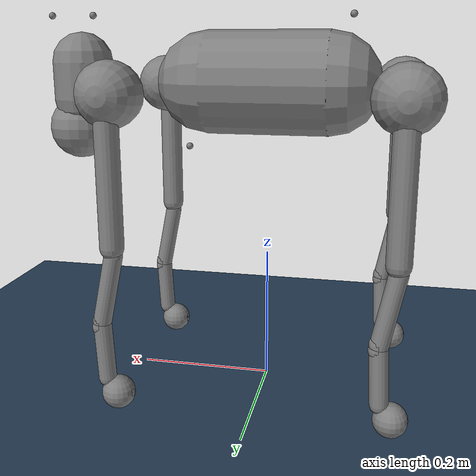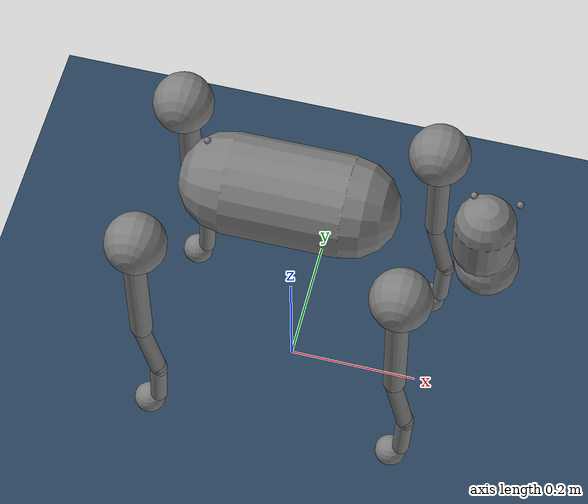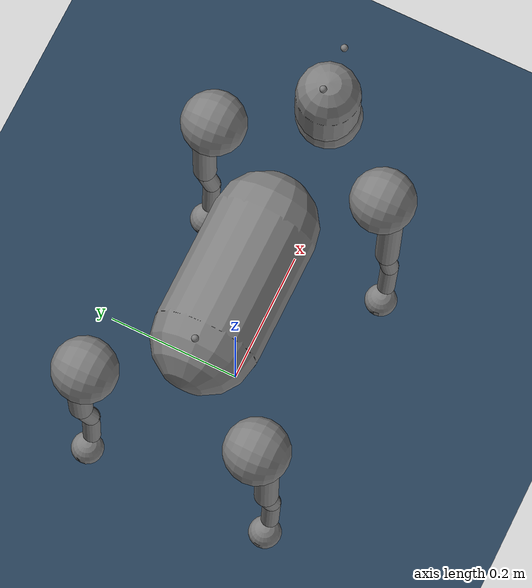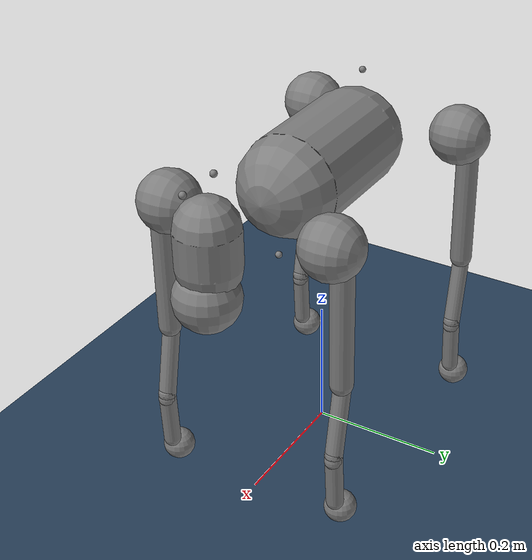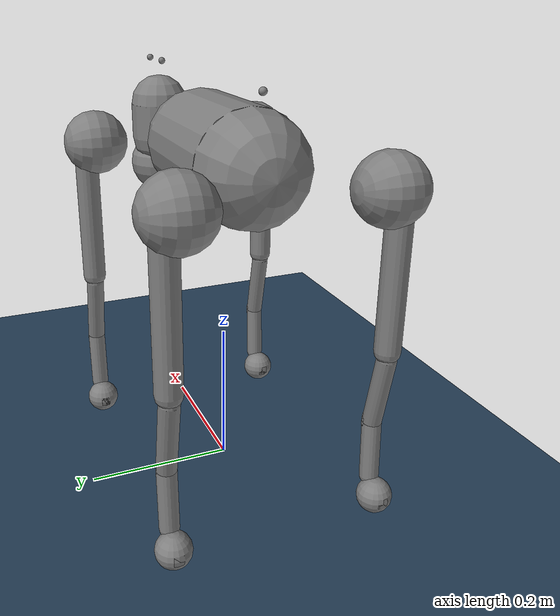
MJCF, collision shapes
<mujoco model="go2 scene">
  <include file="go2_torque_test.xml" />

  <statistic center="0 0 0.1" extent="0.8" />

  <visual>
    <headlight diffuse="0.6 0.6 0.6" ambient="0.3 0.3 0.3" specular="0 0 0" />
    <rgba haze="0.15 0.25 0.35 1" />
    <global azimuth="-130" elevation="-20" />
  </visual>

  <asset>
    <texture type="skybox" builtin="gradient" rgb1="0.3 0.5 0.7" rgb2="0 0 0" width="512" height="3072" />
    <texture type="2d" name="groundplane" builtin="checker" mark="edge" rgb1="0.2 0.3 0.4" rgb2="0.1 0.2 0.3"  markrgb="1 1 1" width="300" height="300" />
    <material name="groundplane" texture="groundplane" texuniform="true" texrepeat="1 1" reflectance="0.2" />
  </asset>

  <worldbody>
    <light pos="0 0 10" dir="0 0 -1" directional="true" />
    <geom name="floor" size="0 0 0.05" type="plane" material="groundplane" />
  </worldbody>

  <sensor>

    <jointpos name="FL_hip_pos" joint="FL_hip_joint" />
    <jointpos name="FL_thigh_pos" joint="FL_thigh_joint" />
    <jointpos name="FL_calf_pos" joint="FL_calf_joint" />
    <jointpos name="FR_hip_pos" joint="FR_hip_joint" />
    <jointpos name="FR_thigh_pos" joint="FR_thigh_joint" />
    <jointpos name="FR_calf_pos" joint="FR_calf_joint" />
    <jointpos name="RL_hip_pos" joint="RL_hip_joint" />
    <jointpos name="RL_thigh_pos" joint="RL_thigh_joint" />
    <jointpos name="RL_calf_pos" joint="RL_calf_joint" />
    <jointpos name="RR_hip_pos" joint="RR_hip_joint" />
    <jointpos name="RR_thigh_pos" joint="RR_thigh_joint" />
    <jointpos name="RR_calf_pos" joint="RR_calf_joint" />

    <jointvel name="FL_hip_vel" joint="FL_hip_joint" />
    <jointvel name="FL_thigh_vel" joint="FL_thigh_joint" />
    <jointvel name="FL_calf_vel" joint="FL_calf_joint" />
    <jointvel name="FR_hip_vel" joint="FR_hip_joint" />
    <jointvel name="FR_thigh_vel" joint="FR_thigh_joint" />
    <jointvel name="FR_calf_vel" joint="FR_calf_joint" />
    <jointvel name="RL_hip_vel" joint="RL_hip_joint" />
    <jointvel name="RL_thigh_vel" joint="RL_thigh_joint" />
    <jointvel name="RL_calf_vel" joint="RL_calf_joint" />
    <jointvel name="RR_hip_vel" joint="RR_hip_joint" />
    <jointvel name="RR_thigh_vel" joint="RR_thigh_joint" />
    <jointvel name="RR_calf_vel" joint="RR_calf_joint" />

    <jointactuatorfrc name="FL_hip_torque" joint="FL_hip_joint" noise="0.01" />
    <jointactuatorfrc name="FL_thigh_torque" joint="FL_thigh_joint" noise="0.01" />
    <jointactuatorfrc name="FL_calf_torque" joint="FL_calf_joint" noise="0.01" />
    <jointactuatorfrc name="FR_hip_torque" joint="FR_hip_joint" noise="0.01" />
    <jointactuatorfrc name="FR_thigh_torque" joint="FR_thigh_joint" noise="0.01" />
    <jointactuatorfrc name="FR_calf_torque" joint="FR_calf_joint" noise="0.01" />
    <jointactuatorfrc name="RL_hip_torque" joint="RL_hip_joint" noise="0.01" />
    <jointactuatorfrc name="RL_thigh_torque" joint="RL_thigh_joint" noise="0.01" />
    <jointactuatorfrc name="RL_calf_torque" joint="RL_calf_joint" noise="0.01" />
    <jointactuatorfrc name="RR_hip_torque" joint="RR_hip_joint" noise="0.01" />
    <jointactuatorfrc name="RR_thigh_torque" joint="RR_thigh_joint" noise="0.01" />
    <jointactuatorfrc name="RR_calf_torque" joint="RR_calf_joint" noise="0.01" />

    <framequat name="imu_quat" objtype="site" objname="imu" />
    <gyro name="imu_gyro" site="imu" />
    <accelerometer name="imu_acc" site="imu" />

    <framepos name="imu_pos_w" objtype="site" objname="imu" />
    <framelinvel name="imu_vel_w" objtype="site" objname="imu" />

    <velocimeter name="base_vel" site="base_site" />
    <gyro name="base_gyro" site="base_site" />
    <framepos name="base_pos_w" objtype="site" objname="base_site" />
    <framequat name="base_quat_w" objtype="site" objname="base_site" />
    <framelinvel name="base_vel_w" objtype="site" objname="base_site"  />

  </sensor>
</mujoco>

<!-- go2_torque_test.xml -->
<mujoco model="go2">
  <compiler angle="radian" meshdir="assets" autolimits="true" />

  <option cone="elliptic" impratio="1" tolerance="0" ls_tolerance="0" />
  <!-- noslip_iterations="0" tolerance="0"  -->
  <visual>
    <global offheight="2160" offwidth="3840"/>
    <quality offsamples="8"/>
  </visual>

  <default>
    <default class="go2">
      <geom friction="0.4" margin="0.001" condim="1"/>
      <camera fovy="58"/>
      <joint axis="0 1 0" armature="0.0" damping="0.0" frictionloss="0.0" />
      <motor ctrllimited="false" ctrlrange="-23.7 23.7"/>  -->

      <default class="abduction">
        <joint axis="1 0 0" range="-1.0472 1.0472" />

      </default>
      <default class="hip">
        <default class="front_hip">
          <joint range="-1.5708 3.4907"  />
        </default>
        <default class="back_hip">
          <joint range="-0.5236 4.5379" />
        </default>
      </default>
      <default class="knee">
        <motor ctrllimited="false" ctrlrange="-45.43 45.43"/>
        <joint range="-2.7227 -0.83776" />
      </default>
      <default class="visual">
        <geom type="mesh" contype="0" conaffinity="0" group="2"/>
      </default>
      <default class="collision">
        <geom group="3"/>
        <default class="foot">
          <geom size="0.022" pos="-0.002 0 -0.213" priority="1" condim="6"
            friction="0.2 0.02 0.01"/>
        </default>
      </default>
    </default>
  </default>

  <asset>
    <material name="metal" rgba=".9 .95 .95 1" />
    <material name="black" rgba="0 0 0 1" />
    <material name="white" rgba="1 1 1 1" />
    <material name="gray" rgba="0.671705 0.692426 0.774270 1" />

    <mesh file="base_0.obj" />
    <mesh file="base_1.obj" />
    <mesh file="base_2.obj" />
    <mesh file="base_3.obj" />
    <mesh file="base_4.obj" />
    <mesh file="hip_0.obj" />
    <mesh file="hip_1.obj" />
    <mesh file="thigh_0.obj" />
    <mesh file="thigh_1.obj" />
    <mesh file="thigh_mirror_0.obj" />
    <mesh file="thigh_mirror_1.obj" />
    <mesh file="calf_0.obj" />
    <mesh file="calf_1.obj" />
    <mesh file="calf_mirror_0.obj" />
    <mesh file="calf_mirror_1.obj" />
    <mesh file="foot.obj" />
  </asset>

  <worldbody>
    <body name="base_link" pos="0 0 0.445" childclass="go2">
      <inertial pos="0.021112 0 -0.005366" quat="-0.000543471 0.713435 -0.00173769 0.700719"
        mass="6.921"
        diaginertia="0.107027 0.0980771 0.0244531" />
      <freejoint />
      <geom mesh="base_0" material="black" class="visual" />
      <geom mesh="base_1" material="black" class="visual" />
      <geom mesh="base_2" material="black" class="visual" />
      <geom mesh="base_3" material="white" class="visual" />
      <geom mesh="base_4" material="gray" class="visual" />
      <geom name="base_box" size="0.075 0.0881" pos="0.0 0 0.01" quat="0 0.7071 0 0.7071" type="capsule" class="collision" />
      <geom name="base_head_top" size="0.045 0.027" pos="0.285 0 0.01" type="capsule" class="collision" />
      <geom name="base_head_bottom" size="0.047" pos="0.293 0 -0.06" class="collision" />

      <site name="imu" pos="-0.02557 0 0.04232" />
      <site name="base_site" pos="0 0 0" />

      <geom name="z_dummy" pos="0 0 0" size="0.001" />

      <camera name="front" pos="0.33 0 0.105" quat="0.56098553 0.43045933 -0.43045933 -0.56098553"/>
      <site name="front_cam" pos="0.33 0 0.105" quat="0.56098553 0.43045933 -0.43045933 -0.56098553"/>
      <camera name="top" pos="0.265 0 0.105" quat="0 1 0 0" />
      <site name="top_cam" pos="0.265 0 0.105" quat="0 1 0 0" />
      <camera name="back" pos="-0.118 0 0.105" quat="0.56098553 0.43045933 0.43045933 0.56098553"/>
      <site name="back_cam" pos="-0.118 0 0.105" quat="0.56098553 0.43045933 0.43045933 0.56098553"/>
      <camera name="bottom" pos="0.12 0 -0.085"/>
      <site name="bottom_cam" pos="0.12 0 -0.085"/>

      <site name="FL_hip_fixed_site" pos="0.1934 0.142 0" />
      <body name="FL_hip" pos="0.1934 0.0465 0">
        <inertial pos="-0.0054 0.00194 -0.000105" quat="0.497014 0.499245 0.505462 0.498237"
          mass="0.678"
          diaginertia="0.00088403 0.000596003 0.000479967" />
        <joint name="FL_hip_joint" class="abduction" />
        <geom mesh="hip_0" material="metal" class="visual" />
        <geom mesh="hip_1" material="gray" class="visual" />
        <geom name="FL_hip_geom" size="0.046" pos="0 0.08 0" quat="0.707107 0.707107 0 0" type="sphere" class="collision" />
        <body name="FL_thigh" pos="0 0.0955 0">
          <inertial pos="-0.00374 -0.0223 -0.0327" quat="0.829533 0.0847635 -0.0200632 0.551623"
            mass="1.152"
            diaginertia="0.00594973 0.00584149 0.000878787" />
          <site name="FL_thigh_site" pos="0 0 0" />
          <joint name="FL_thigh_joint" class="front_hip" />
          <geom mesh="thigh_0" material="metal" class="visual" />
          <geom mesh="thigh_1" material="gray" class="visual" />
          <geom name="FL_thigh_geom" size="0.017 0.1015" pos="0 0 -0.1065" quat="0 0.707107 0.707107 0"
            type="capsule" class="collision" />
          <body name="FL_calf" pos="0 0 -0.213">
            <inertial pos="0.00629595 -0.000622121 -0.141417"
              quat="0.710672 0.00154099 -0.00450087 0.703508"
              mass="0.241352" diaginertia="0.0014901 0.00146356 5.31397e-05" />
            <joint name="FL_calf_joint" class="knee" />
            <geom mesh="calf_0" material="gray" class="visual" />
            <geom mesh="calf_1" material="black" class="visual" />
            <geom name="FL_shank_top" size="0.013 0.055" pos="0.01 0 -0.06" quat="0.994493 0 -0.104807 0"
              type="capsule" class="collision" />
            <geom name="FL_shank_bottom" size="0.013 0.044" pos="0.018 0 -0.148" quat="0.999688 0 0.0249974 0"
              type="capsule" class="collision" />
            <geom pos="0 0 -0.213" mesh="foot" class="visual" material="black" />
            <geom name="FL" class="foot" />
            <body name="FL_foot" pos="0 0 -0.213" />
            <site name="FL_foot_site" pos="0 0 -0.213" size="0.024"/>
          </body>
        </body>
      </body>
      <site name="FR_hip_fixed_site" pos="0.1934 -.142 0" />
      <body name="FR_hip" pos="0.1934 -0.0465 0">
        <inertial pos="-0.0054 -0.00194 -0.000105" quat="0.498237 0.505462 0.499245 0.497014"
          mass="0.678"
          diaginertia="0.00088403 0.000596003 0.000479967" />
        <joint name="FR_hip_joint" class="abduction" />
        <geom mesh="hip_0" material="metal" class="visual" quat="4.63268e-05 1 0 0" />
        <geom mesh="hip_1" material="gray" class="visual" quat="4.63268e-05 1 0 0" />
        <geom name="FR_hip_geom" size="0.046" pos="0 -0.08 0" quat="0.707107 0.707107 0 0" type="sphere"
          class="collision" />
        <geom name="FR_hip_dummy" size="0.01" pos="0 -0.08 0" />
        <body name="FR_thigh" pos="0 -0.0955 0">
          <inertial pos="-0.00374 0.0223 -0.0327" quat="0.551623 -0.0200632 0.0847635 0.829533"
            mass="1.152"
            diaginertia="0.00594973 0.00584149 0.000878787" />
          <site name="FR_thigh_site" pos="0 0 0" />
          <joint name="FR_thigh_joint" class="front_hip" />
          <geom mesh="thigh_mirror_0" material="metal" class="visual" />
          <geom mesh="thigh_mirror_1" material="gray" class="visual" />
          <geom name="FR_thigh_geom" size="0.017 0.1015" pos="0 0 -0.1065" quat="0 0.707107 0.707107 0"
            type="capsule" class="collision"  />
          <body name="FR_calf" pos="0 0 -0.213">
            <inertial pos="0.00629595 0.000622121 -0.141417"
              quat="0.703508 -0.00450087 0.00154099 0.710672"
              mass="0.241352" diaginertia="0.0014901 0.00146356 5.31397e-05" />
            <joint name="FR_calf_joint" class="knee" />
            <geom mesh="calf_mirror_0" material="gray" class="visual" />
            <geom mesh="calf_mirror_1" material="black" class="visual" />
            <geom name="FR_shank_top" size="0.013 0.055" pos="0.01 0 -0.06" quat="0.995004 0 -0.0998334 0"
              type="capsule" class="collision" />
            <geom name="FR_shank_bottom" size="0.013 0.044" pos="0.018 0 -0.148" quat="0.999688 0 0.0249974 0"
              type="capsule" class="collision" />
            <geom pos="0 0 -0.213" mesh="foot" class="visual" material="black" />
            <geom name="FR" class="foot" />
            <body name="FR_foot" pos="0 0 -0.213" />
            <site name="FR_foot_site" pos="0 0 -0.213" size="0.024"/>
          </body>
        </body>
      </body>
      <site name="RL_hip_fixed_site" pos="-0.1934 0.142 0" />
      <body name="RL_hip" pos="-0.1934 0.0465 0">
        <inertial pos="0.0054 0.00194 -0.000105" quat="0.505462 0.498237 0.497014 0.499245"
          mass="0.678"
          diaginertia="0.00088403 0.000596003 0.000479967" />
        <joint name="RL_hip_joint" class="abduction" />
        <geom mesh="hip_0" material="metal" class="visual" quat="4.63268e-05 0 1 0" />
        <geom mesh="hip_1" material="gray" class="visual" quat="4.63268e-05 0 1 0" />
        <geom name="RL_hip_geom" size="0.046" pos="0 0.08 0" quat="0.707107 0.707107 0 0" type="sphere"
          class="collision" />
        <geom name="RL_hip_dummy" size="0.01" pos="0 0.08 0" />
        <body name="RL_thigh" pos="0 0.0955 0">
          <inertial pos="-0.00374 -0.0223 -0.0327" quat="0.829533 0.0847635 -0.0200632 0.551623"
            mass="1.152"
            diaginertia="0.00594973 0.00584149 0.000878787" />
          <site name="RL_thigh_site" pos="0 0 0" />
          <joint name="RL_thigh_joint" class="back_hip" />
          <geom mesh="thigh_0" material="metal" class="visual" />
          <geom mesh="thigh_1" material="gray" class="visual" />
          <geom name="RL_thigh_geom" size="0.017 0.1015" pos="0 0 -0.1065" quat="0 0.707107 0.707107 0"
            type="capsule" class="collision" />
          <body name="RL_calf" pos="0 0 -0.213">
            <inertial pos="0.00629595 -0.000622121 -0.141417"
              quat="0.710672 0.00154099 -0.00450087 0.703508"
              mass="0.241352" diaginertia="0.0014901 0.00146356 5.31397e-05" />
            <joint name="RL_calf_joint" class="knee" />
            <geom mesh="calf_0" material="gray" class="visual" />
            <geom mesh="calf_1" material="black" class="visual" />
            <geom name="RL_shank_top" size="0.013 0.055" pos="0.01 0 -0.06" quat="0.995004 0 -0.0998334 0"
              type="capsule" class="collision" />
            <geom name="RL_shank_bottom" size="0.013 0.044" pos="0.018 0 -0.148" quat="0.999688 0 0.0249974 0"
              type="capsule" class="collision" />
            <geom pos="0 0 -0.213" mesh="foot" class="visual" material="black" />
            <geom name="RL" class="foot" />
            <body name="RL_foot" pos="0 0 -0.213" />
            <site name="RL_foot_site" pos="0 0 -0.213" size="0.024"/>
          </body>
        </body>
      </body>
      <site name="RR_hip_fixed_site" pos="-0.1934 -.142 0" />
      <body name="RR_hip" pos="-0.1934 -0.0465 0">
        <inertial pos="0.0054 -0.00194 -0.000105" quat="0.499245 0.497014 0.498237 0.505462"
          mass="0.678"
          diaginertia="0.00088403 0.000596003 0.000479967" />
        <joint name="RR_hip_joint" class="abduction" />
        <geom mesh="hip_0" material="metal" class="visual"
          quat="2.14617e-09 4.63268e-05 4.63268e-05 -1" />
        <geom mesh="hip_1" material="gray" class="visual"
          quat="2.14617e-09 4.63268e-05 4.63268e-05 -1" />
        <geom name="RR_hip_geom" size="0.046" pos="0 -0.08 0" quat="0.707107 0.707107 0 0" type="sphere"
          class="collision" />
        <geom name="RR_hip_dummy" size="0.01" pos="0 -0.08 0" />
        <body name="RR_thigh" pos="0 -0.0955 0">
          <inertial pos="-0.00374 0.0223 -0.0327" quat="0.551623 -0.0200632 0.0847635 0.829533"
            mass="1.152"
            diaginertia="0.00594973 0.00584149 0.000878787" />
          <site name="RR_thigh_site" pos="0 0 0" />
          <joint name="RR_thigh_joint" class="back_hip" />
          <geom mesh="thigh_mirror_0" material="metal" class="visual" />
          <geom mesh="thigh_mirror_1" material="gray" class="visual" />
          <geom name="RR_thigh_geom" size="0.017 0.1015" pos="0 0 -0.1065" quat="0 0.707107 0.707107 0"
            type="capsule" class="collision"  />
          <body name="RR_calf" pos="0 0 -0.213">
            <inertial pos="0.00629595 0.000622121 -0.141417"
              quat="0.703508 -0.00450087 0.00154099 0.710672"
              mass="0.241352" diaginertia="0.0014901 0.00146356 5.31397e-05" />
            <joint name="RR_calf_joint" class="knee" />
            <geom mesh="calf_mirror_0" material="gray" class="visual" />
            <geom mesh="calf_mirror_1" material="black" class="visual" />
            <geom name="RR_shank_top" size="0.013 0.055" pos="0.01 0 -0.06" quat="0.995004 0 -0.0998334 0"
              type="capsule" class="collision" />
            <geom name="RR_shank_bottom" size="0.013 0.044" pos="0.018 0 -0.148" quat="0.999688 0 0.0249974 0"
              type="capsule" class="collision" />
            <geom pos="0 0 -0.213" mesh="foot" class="visual" material="black" />
            <geom name="RR" class="foot" />
            <body name="RR_foot" pos="0 0 -0.213" />
            <site name="RR_foot_site" pos="0 0 -0.213" size="0.024"/>
          </body>
        </body>
      </body>
    </body>
  </worldbody>

  <actuator>
    <motor class="abduction" name="FL_hip_q" joint="FL_hip_joint" />
    <motor class="hip" name="FL_thigh_q" joint="FL_thigh_joint" />
    <motor class="knee" name="FL_calf_q" joint="FL_calf_joint" />
    <motor class="abduction" name="FR_hip_q" joint="FR_hip_joint" />
    <motor class="hip" name="FR_thigh_q" joint="FR_thigh_joint" />
    <motor class="knee" name="FR_calf_q" joint="FR_calf_joint" />
    <motor class="abduction" name="RL_hip_q" joint="RL_hip_joint" />
    <motor class="hip" name="RL_thigh_q" joint="RL_thigh_joint" />
    <motor class="knee" name="RL_calf_q" joint="RL_calf_joint" />
    <motor class="abduction" name="RR_hip_q" joint="RR_hip_joint" />
    <motor class="hip" name="RR_thigh_q" joint="RR_thigh_joint" />
    <motor class="knee" name="RR_calf_q" joint="RR_calf_joint" />
  </actuator>

  <keyframe>
    <key name="home" qpos="0 0 0.27 1 0 0 0 0 0.9 -1.8 0 0.9 -1.8 0 0.9 -1.8 0 0.9 -1.8"
     ctrl="0 0.9 -1.8 0 0.9 -1.8 0 0.9 -1.8 0 0.9 -1.8" />
    <key name="init" qpos="0 0 0.4 1 0 0 0 0.1 0.8 -1.5 -0.1 0.8 -1.5 0.1 1.0 -1.5 -0.1 1.0 -1.5" />
  </keyframe>
</mujoco>
